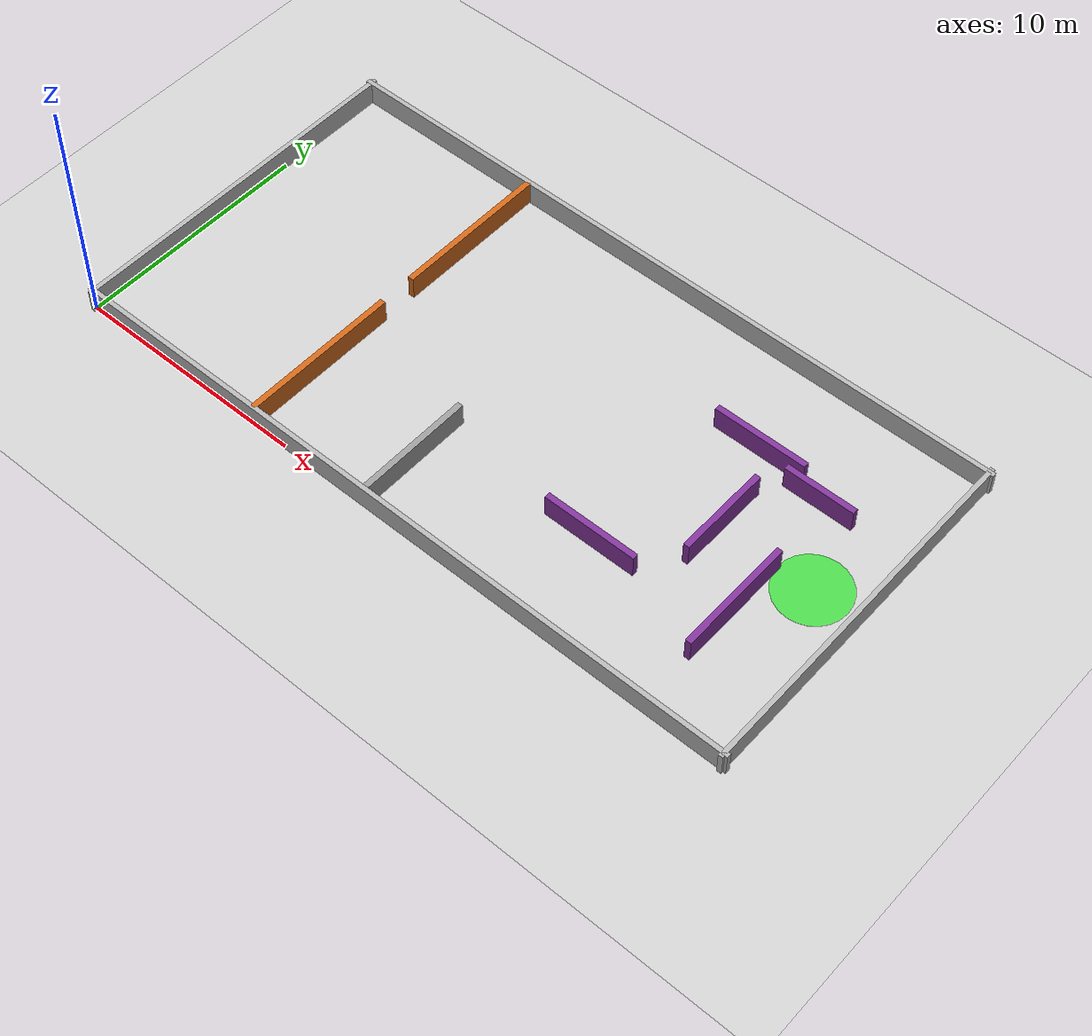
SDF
<?xml version="1.0" ?>
<sdf version="1.7">
  <world name="obstacle_course">

    <!-- ──────────── Physics & rendering ──────────── -->
    <gravity>0 0 -9.8</gravity>
    <physics type="ode">
      <real_time_update_rate>1000</real_time_update_rate>
      <max_step_size>0.001</max_step_size>
      <ode>
        <solver>
          <type>quick</type>
          <iters>150</iters>
        </solver>
      </ode>
    </physics>
    <scene>
      <ambient>0.4 0.4 0.4 1</ambient>
      <background>0.7 0.7 0.7 1</background>
      <shadows>true</shadows>
    </scene>

    <!-- ──────────── Standard ground plane & sun ──────────── -->
    <include>
      <uri>model://ground_plane</uri>
    </include>
    <include>
      <uri>model://sun</uri>
    </include>

    <!-- ══════════════════════════════════════════════════════
         OUTER BOUNDARY WALLS  (30 × 15 m arena)
    ══════════════════════════════════════════════════════ -->

    <!-- North wall (top) -->
    <model name="wall_north">
      <static>true</static>
      <pose>15 15 0.5 0 0 0</pose>
      <link name="link">
        <collision name="c">
          <geometry><box><size>30.4 0.2 1.0</size></box></geometry>
        </collision>
        <visual name="v">
          <geometry><box><size>30.4 0.2 1.0</size></box></geometry>
          <material>
            <ambient>0.7 0.7 0.7 1</ambient>
            <diffuse>0.7 0.7 0.7 1</diffuse>
          </material>
        </visual>
      </link>
    </model>

    <!-- South wall (bottom) -->
    <model name="wall_south">
      <static>true</static>
      <pose>15 0 0.5 0 0 0</pose>
      <link name="link">
        <collision name="c">
          <geometry><box><size>30.4 0.2 1.0</size></box></geometry>
        </collision>
        <visual name="v">
          <geometry><box><size>30.4 0.2 1.0</size></box></geometry>
          <material><ambient>0.7 0.7 0.7 1</ambient><diffuse>0.7 0.7 0.7 1</diffuse></material>
        </visual>
      </link>
    </model>

    <!-- West wall (left) -->
    <model name="wall_west">
      <static>true</static>
      <pose>0 7.5 0.5 0 0 0</pose>
      <link name="link">
        <collision name="c">
          <geometry><box><size>0.2 15.4 1.0</size></box></geometry>
        </collision>
        <visual name="v">
          <geometry><box><size>0.2 15.4 1.0</size></box></geometry>
          <material><ambient>0.7 0.7 0.7 1</ambient><diffuse>0.7 0.7 0.7 1</diffuse></material>
        </visual>
      </link>
    </model>

    <!-- East wall (right) -->
    <model name="wall_east">
      <static>true</static>
      <pose>30 7.5 0.5 0 0 0</pose>
      <link name="link">
        <collision name="c">
          <geometry><box><size>0.2 15.4 1.0</size></box></geometry>
        </collision>
        <visual name="v">
          <geometry><box><size>0.2 15.4 1.0</size></box></geometry>
          <material><ambient>0.7 0.7 0.7 1</ambient><diffuse>0.7 0.7 0.7 1</diffuse></material>
        </visual>
      </link>
    </model>

    <model name="bottleneck_south">
      <static>true</static>
      <pose>8.5 3.375 0.5 0 0 0</pose>
      <link name="link">
        <collision name="c">
          <geometry><box><size>0.25 6.75 1.0</size></box></geometry>
        </collision>
        <visual name="v">
          <geometry><box><size>0.25 6.75 1.0</size></box></geometry>
          <material>
            <ambient>0.8 0.4 0.1 1</ambient>
            <diffuse>0.8 0.4 0.1 1</diffuse>
          </material>
        </visual>
      </link>
    </model>

    <model name="bottleneck_north">
      <static>true</static>
      <pose>8.5 11.625 0.5 0 0 0</pose>
      <link name="link">
        <collision name="c">
          <geometry><box><size>0.25 6.75 1.0</size></box></geometry>
        </collision>
        <visual name="v">
          <geometry><box><size>0.25 6.75 1.0</size></box></geometry>
          <material>
            <ambient>0.8 0.4 0.1 1</ambient>
            <diffuse>0.8 0.4 0.1 1</diffuse>
          </material>
        </visual>
      </link>
    </model>

    <model name="divider_south">
      <static>true</static>
      <pose>14 2.5 0.5 0 0 0</pose>
      <link name="link">
        <collision name="c">
          <geometry><box><size>0.25 5.0 1.0</size></box></geometry>
        </collision>
        <visual name="v">
          <geometry><box><size>0.25 5.0 1.0</size></box></geometry>
          <material>
            <ambient>0.6 0.6 0.6 1</ambient>
            <diffuse>0.6 0.6 0.6 1</diffuse>
          </material>
        </visual>
      </link>
    </model>

    <!-- Maze wall 1: horizontal, south side -->
    <model name="maze_h1">
      <static>true</static>
      <pose>21 4.0 0.5 0 0 0</pose>
      <link name="link">
        <collision name="c"><geometry><box><size>4.0 0.25 1.0</size></box></geometry></collision>
        <visual name="v">
          <geometry><box><size>4.0 0.25 1.0</size></box></geometry>
          <material><ambient>0.5 0.2 0.6 1</ambient><diffuse>0.5 0.2 0.6 1</diffuse></material>
        </visual>
      </link>
    </model>

    <!-- Maze wall 2: horizontal, north side -->
    <model name="maze_h2">
      <static>true</static>
      <pose>23 11.0 0.5 0 0 0</pose>
      <link name="link">
        <collision name="c"><geometry><box><size>4.0 0.25 1.0</size></box></geometry></collision>
        <visual name="v">
          <geometry><box><size>4.0 0.25 1.0</size></box></geometry>
          <material><ambient>0.5 0.2 0.6 1</ambient><diffuse>0.5 0.2 0.6 1</diffuse></material>
        </visual>
      </link>
    </model>

    <!-- Maze wall 3: vertical, center -->
    <model name="maze_v1">
      <static>true</static>
      <pose>24 7.5 0.5 0 0 0</pose>
      <link name="link">
        <collision name="c"><geometry><box><size>0.25 4.0 1.0</size></box></geometry></collision>
        <visual name="v">
          <geometry><box><size>0.25 4.0 1.0</size></box></geometry>
          <material><ambient>0.5 0.2 0.6 1</ambient><diffuse>0.5 0.2 0.6 1</diffuse></material>
        </visual>
      </link>
    </model>

    <!-- Maze wall 4: vertical, right side -->
    <model name="maze_v2">
      <static>true</static>
      <pose>26.5 5.0 0.5 0 0 0</pose>
      <link name="link">
        <collision name="c"><geometry><box><size>0.25 5.0 1.0</size></box></geometry></collision>
        <visual name="v">
          <geometry><box><size>0.25 5.0 1.0</size></box></geometry>
          <material><ambient>0.5 0.2 0.6 1</ambient><diffuse>0.5 0.2 0.6 1</diffuse></material>
        </visual>
      </link>
    </model>

    <!-- Maze wall 5: horizontal, exit funnel -->
    <model name="maze_h3">
      <static>true</static>
      <pose>26 10.5 0.5 0 0 0</pose>
      <link name="link">
        <collision name="c"><geometry><box><size>3.0 0.25 1.0</size></box></geometry></collision>
        <visual name="v">
          <geometry><box><size>3.0 0.25 1.0</size></box></geometry>
          <material><ambient>0.5 0.2 0.6 1</ambient><diffuse>0.5 0.2 0.6 1</diffuse></material>
        </visual>
      </link>
    </model>

    <!-- ══════════════════════════════════════════════════════
         GOAL ZONE — flat green disc at (28, 7.5)
    ══════════════════════════════════════════════════════ -->

    <model name="goal_marker">
      <static>true</static>
      <pose>28 7.5 0.01 0 0 0</pose>
      <link name="link">
        <visual name="v">
          <geometry>
            <cylinder>
              <radius>1.5</radius>
              <length>0.02</length>
            </cylinder>
          </geometry>
          <material>
            <ambient>0 0.9 0 0.6</ambient>
            <diffuse>0 0.9 0 0.6</diffuse>
            <emissive>0 0.4 0 0</emissive>
          </material>
        </visual>
        <!-- No collision on goal marker — purely visual -->
      </link>
    </model>

  </world>
</sdf>
